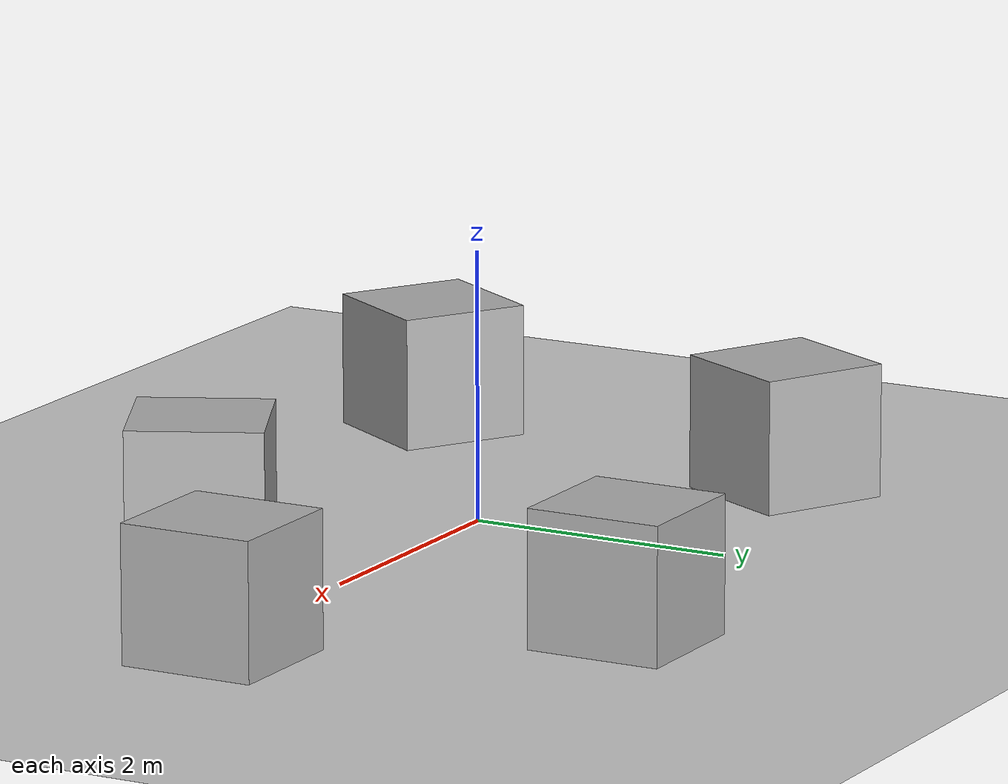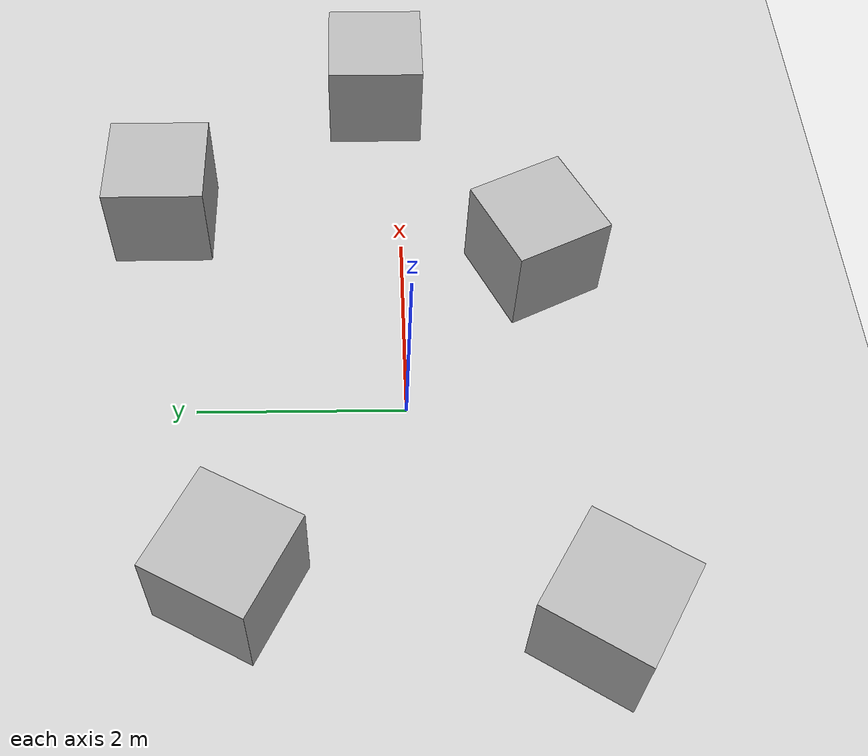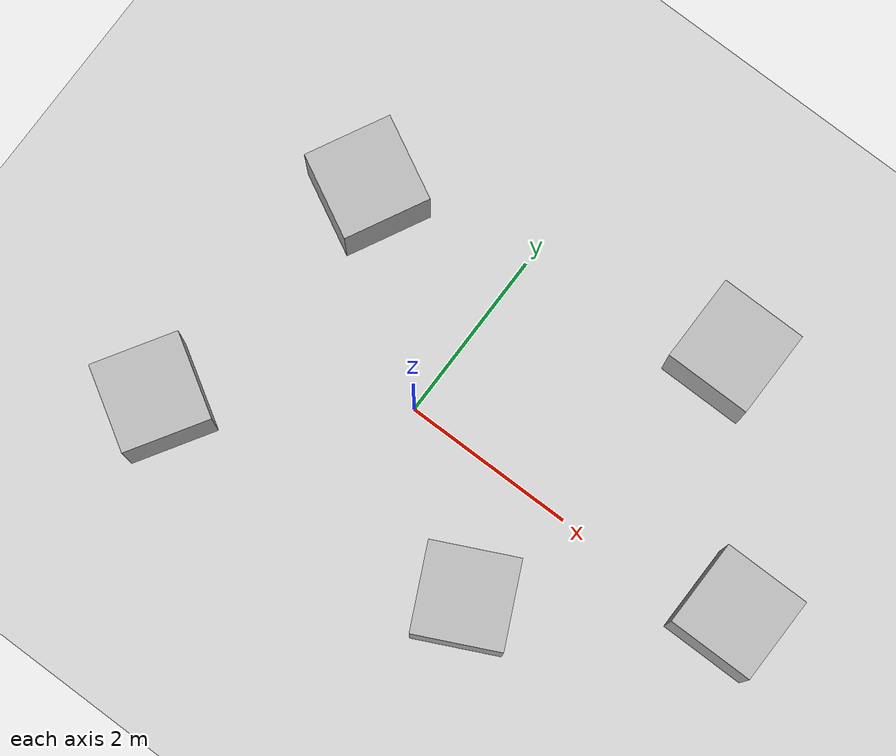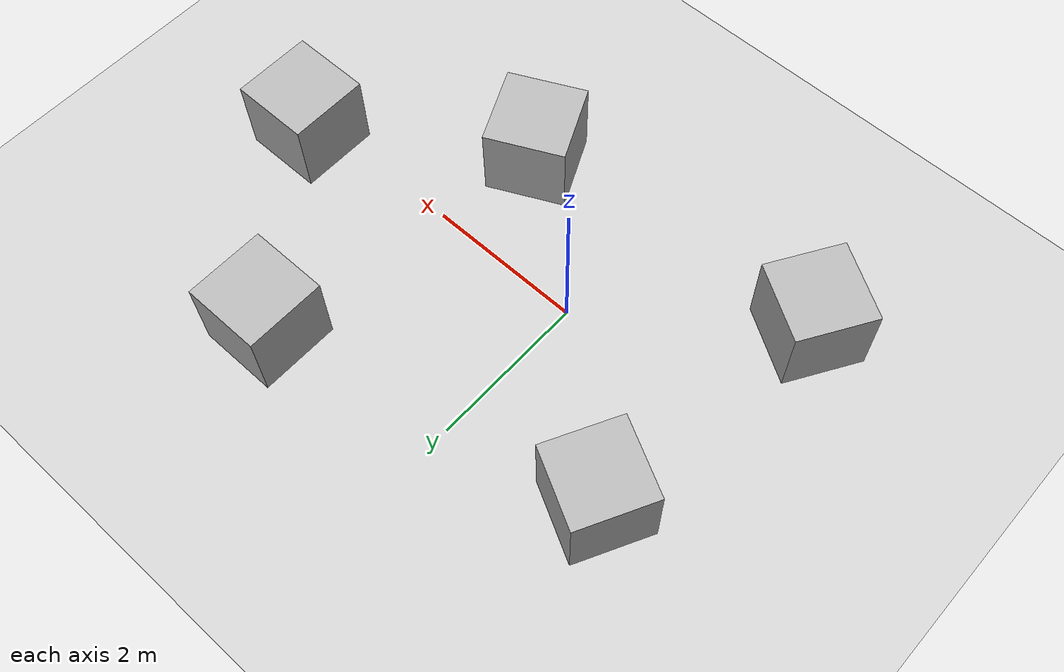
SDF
<sdf version='1.10'>
  <world name='empty'>
    <physics name='1ms' type='ignored'>
      <max_step_size>0.001</max_step_size>
      <real_time_factor>1</real_time_factor>
      <real_time_update_rate>1000</real_time_update_rate>
    </physics>
    <plugin name='gz::sim::systems::Physics' filename='gz-sim-physics-system'/>
    <plugin name='gz::sim::systems::UserCommands' filename='gz-sim-user-commands-system'/>
    <plugin name='gz::sim::systems::SceneBroadcaster' filename='gz-sim-scene-broadcaster-system'/>
    <plugin name='gz::sim::systems::Contact' filename='gz-sim-contact-system'/>
    <plugin name='gz::sim::systems::Imu' filename='gz-sim-imu-system'/>
    <plugin name='gz::sim::systems::Sensors' filename='gz-sim-sensors-system'>
      <render_engine>ogre2</render_engine>
    </plugin>
    <gravity>0 0 -9.8000000000000007</gravity>
    <magnetic_field>5.5644999999999998e-06 2.2875799999999999e-05 -4.2388400000000002e-05</magnetic_field>
    <atmosphere type='adiabatic'/>
    <scene>
      <ambient>0.400000006 0.400000006 0.400000006 1</ambient>
      <background>0.699999988 0.699999988 0.699999988 1</background>
      <shadows>true</shadows>
    </scene>
    <model name='ground_plane'>
      <static>true</static>
      <link name='link'>
        <collision name='collision'>
          <geometry>
            <plane>
              <normal>0 0 1</normal>
              <size>100 100</size>
            </plane>
          </geometry>
          <surface>
            <friction>
              <ode/>
            </friction>
            <bounce/>
            <contact/>
          </surface>
        </collision>
        <visual name='visual'>
          <geometry>
            <plane>
              <normal>0 0 1</normal>
              <size>100 100</size>
            </plane>
          </geometry>
          <material>
            <ambient>0.800000012 0.800000012 0.800000012 1</ambient>
            <diffuse>0.800000012 0.800000012 0.800000012 1</diffuse>
            <specular>0.800000012 0.800000012 0.800000012 1</specular>
          </material>
        </visual>
        <pose>0 0 0 0 0 0</pose>
        <inertial>
          <pose>0 0 0 0 0 0</pose>
          <mass>1</mass>
          <inertia>
            <ixx>1</ixx>
            <ixy>0</ixy>
            <ixz>0</ixz>
            <iyy>1</iyy>
            <iyz>0</iyz>
            <izz>1</izz>
          </inertia>
        </inertial>
        <enable_wind>false</enable_wind>
      </link>
      <pose>0 0 0 0 0 0</pose>
      <self_collide>false</self_collide>
    </model>
    <model name='box'>
      <pose>2.3574834545041288 2.4643647237051445 0.49999999980497606 1.0048033485058014e-21 -2.4640853465547739e-21 -3.9210766489770922e-22</pose>
      <link name='box_link'>
        <inertial>
          <inertia>
            <ixx>0.16666</ixx>
            <ixy>0</ixy>
            <ixz>0</ixz>
            <iyy>0.16666</iyy>
            <iyz>0</iyz>
            <izz>0.16666</izz>
          </inertia>
          <mass>1</mass>
          <pose>0 0 0 0 0 0</pose>
        </inertial>
        <collision name='box_collision'>
          <geometry>
            <box>
              <size>1 1 1</size>
            </box>
          </geometry>
          <surface>
            <friction>
              <ode/>
            </friction>
            <bounce/>
            <contact/>
          </surface>
        </collision>
        <visual name='box_visual'>
          <geometry>
            <box>
              <size>1 1 1</size>
            </box>
          </geometry>
          <material>
            <ambient>0.300000012 0.300000012 0.300000012 1</ambient>
            <diffuse>0.699999988 0.699999988 0.699999988 1</diffuse>
            <specular>1 1 1 1</specular>
          </material>
        </visual>
        <pose>0 0 0 0 0 0</pose>
        <enable_wind>false</enable_wind>
      </link>
      <static>false</static>
      <self_collide>false</self_collide>
    </model>
    <model name='box_0'>
      <pose>-1.8122800588607788 1.5695199966430664 0.49999999980497606 -5.6633659058826257e-21 3.3698233843043827e-21 -0.48152974435677465</pose>
      <link name='box_link'>
        <inertial>
          <inertia>
            <ixx>0.16666</ixx>
            <ixy>0</ixy>
            <ixz>0</ixz>
            <iyy>0.16666</iyy>
            <iyz>0</iyz>
            <izz>0.16666</izz>
          </inertia>
          <mass>1</mass>
          <pose>0 0 0 0 0 0</pose>
        </inertial>
        <collision name='box_collision'>
          <geometry>
            <box>
              <size>1 1 1</size>
            </box>
          </geometry>
          <surface>
            <friction>
              <ode/>
            </friction>
            <bounce/>
            <contact/>
          </surface>
        </collision>
        <visual name='box_visual'>
          <geometry>
            <box>
              <size>1 1 1</size>
            </box>
          </geometry>
          <material>
            <ambient>0.300000012 0.300000012 0.300000012 1</ambient>
            <diffuse>0.699999988 0.699999988 0.699999988 1</diffuse>
            <specular>1 1 1 1</specular>
          </material>
        </visual>
        <pose>0 0 0 0 0 0</pose>
        <enable_wind>false</enable_wind>
      </link>
      <static>false</static>
      <self_collide>false</self_collide>
    </model>
    <model name='box_1'>
      <pose>1.6794099807739258 -1.3264700174331665 0.49999999980497606 -1.7390904041644465e-21 -1.469391796021745e-21 0.44651430974431489</pose>
      <link name='box_link'>
        <inertial>
          <inertia>
            <ixx>0.16666</ixx>
            <ixy>0</ixy>
            <ixz>0</ixz>
            <iyy>0.16666</iyy>
            <iyz>0</iyz>
            <izz>0.16666</izz>
          </inertia>
          <mass>1</mass>
          <pose>0 0 0 0 0 0</pose>
        </inertial>
        <collision name='box_collision'>
          <geometry>
            <box>
              <size>1 1 1</size>
            </box>
          </geometry>
          <surface>
            <friction>
              <ode/>
            </friction>
            <bounce/>
            <contact/>
          </surface>
        </collision>
        <visual name='box_visual'>
          <geometry>
            <box>
              <size>1 1 1</size>
            </box>
          </geometry>
          <material>
            <ambient>0.300000012 0.300000012 0.300000012 1</ambient>
            <diffuse>0.699999988 0.699999988 0.699999988 1</diffuse>
            <specular>1 1 1 1</specular>
          </material>
        </visual>
        <pose>0 0 0 0 0 0</pose>
        <enable_wind>false</enable_wind>
      </link>
      <static>false</static>
      <self_collide>false</self_collide>
    </model>
    <model name='box_2'>
      <pose>-2.2334198951721191 -1.6194700002670288 0.49999999980497606 -2.0865999152418755e-21 2.8052020264444084e-21 -0.55327972589685104</pose>
      <link name='box_link'>
        <inertial>
          <inertia>
            <ixx>0.16666</ixx>
            <ixy>0</ixy>
            <ixz>0</ixz>
            <iyy>0.16666</iyy>
            <iyz>0</iyz>
            <izz>0.16666</izz>
          </inertia>
          <mass>1</mass>
          <pose>0 0 0 0 0 0</pose>
        </inertial>
        <collision name='box_collision'>
          <geometry>
            <box>
              <size>1 1 1</size>
            </box>
          </geometry>
          <surface>
            <friction>
              <ode/>
            </friction>
            <bounce/>
            <contact/>
          </surface>
        </collision>
        <visual name='box_visual'>
          <geometry>
            <box>
              <size>1 1 1</size>
            </box>
          </geometry>
          <material>
            <ambient>0.300000012 0.300000012 0.300000012 1</ambient>
            <diffuse>0.699999988 0.699999988 0.699999988 1</diffuse>
            <specular>1 1 1 1</specular>
          </material>
        </visual>
        <pose>0 0 0 0 0 0</pose>
        <enable_wind>false</enable_wind>
      </link>
      <static>false</static>
      <self_collide>false</self_collide>
    </model>
    <model name='box_3'>
      <pose>4.0295827601540193 0.24537202246089418 0.49999999980497606 1.0048033485058014e-21 -2.4640853465547739e-21 -3.9210766489770922e-22</pose>
      <link name='box_link'>
        <inertial>
          <inertia>
            <ixx>0.16666</ixx>
            <ixy>0</ixy>
            <ixz>0</ixz>
            <iyy>0.16666</iyy>
            <iyz>0</iyz>
            <izz>0.16666</izz>
          </inertia>
          <mass>1</mass>
          <pose>0 0 0 0 0 0</pose>
        </inertial>
        <collision name='box_collision'>
          <geometry>
            <box>
              <size>1 1 1</size>
            </box>
          </geometry>
          <surface>
            <friction>
              <ode/>
            </friction>
            <bounce/>
            <contact/>
          </surface>
        </collision>
        <visual name='box_visual'>
          <geometry>
            <box>
              <size>1 1 1</size>
            </box>
          </geometry>
          <material>
            <ambient>0.300000012 0.300000012 0.300000012 1</ambient>
            <diffuse>0.699999988 0.699999988 0.699999988 1</diffuse>
            <specular>1 1 1 1</specular>
          </material>
        </visual>
        <pose>0 0 0 0 0 0</pose>
        <enable_wind>false</enable_wind>
      </link>
      <static>false</static>
      <self_collide>false</self_collide>
    </model>

    <light name='sun' type='directional'>
      <pose>0 0 10 0 0 0</pose>
      <cast_shadows>true</cast_shadows>
      <intensity>1</intensity>
      <direction>-0.5 0.10000000000000001 -0.90000000000000002</direction>
      <diffuse>0.800000012 0.800000012 0.800000012 1</diffuse>
      <specular>0.200000003 0.200000003 0.200000003 1</specular>
      <attenuation>
        <range>1000</range>
        <linear>0.01</linear>
        <constant>0.90000000000000002</constant>
        <quadratic>0.001</quadratic>
      </attenuation>
      <spot>
        <inner_angle>0</inner_angle>
        <outer_angle>0</outer_angle>
        <falloff>0</falloff>
      </spot>
    </light>
  </world>
</sdf>
